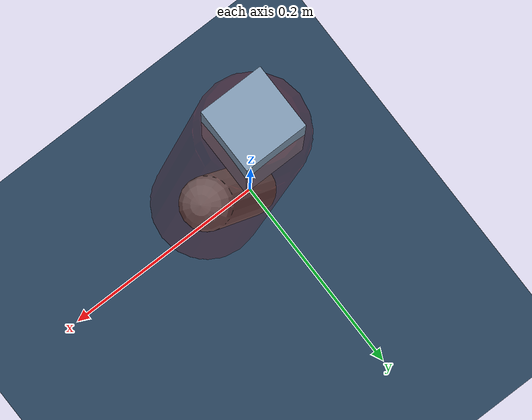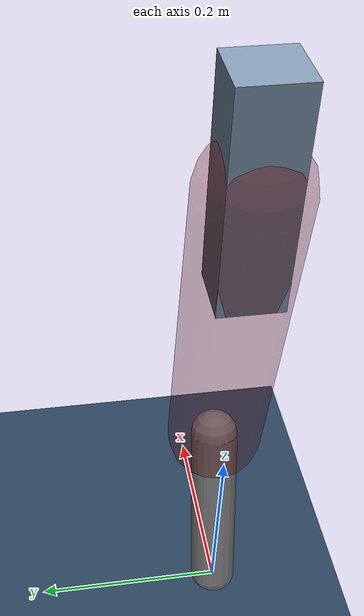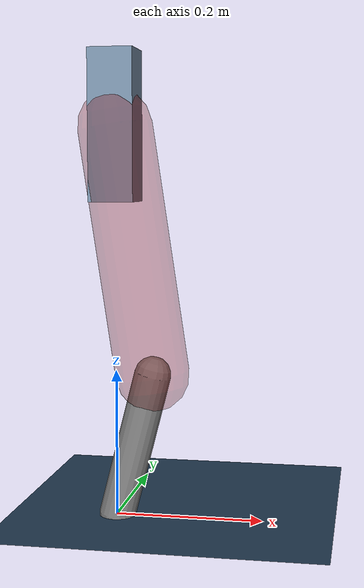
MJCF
<mujoco model="Hopper2D">
	<compiler inertiafromgeom="true" angle="radian" />
	<option timestep="0.001" integrator="implicit" cone="elliptic" solver="Newton" tolerance="1e-10" />

	<default>
		<geom contype="1" conaffinity="1" condim="3" friction="2 0.005 0.0001" solref="0.005 1" />
		<joint limited="true" damping="0.1" />
	</default>

	<asset>
		<texture name="skybox" type="skybox" builtin="gradient" rgb1=".4 .6 .8" rgb2="0 0 0" width="800" height="800" />
		<texture name="grid" type="2d" builtin="checker" rgb1=".1 .2 .3" rgb2=".2 .3 .4" width="300" height="300" mark="edge" markrgb=".2 .3 .4" />
		<material name="ground" texture="grid" texrepeat="1 1" texuniform="true" reflectance="0.1" />
		<material name="leg" rgba="0.5 0.6 0.7 1" />
	</asset>

	<worldbody>

		<geom name="floor" type="plane" size="5 5 0.25" material="ground" />

		<light directional="false" diffuse="0.8 0.8 0.8" specular="0.3 0.3 0.3" pos="0 0 2" dir="0 0 -1" />
		<light mode="targetbodycom" target="base" directional="false" diffuse="0.8 0.8 0.8" specular="0.3 0.3 0.3" pos="0 0 2" dir="0 0 -1" />

		<camera name="fixed" pos="0 -2 1" xyaxes="1 0 0 0 0 1" />
		<camera name="tracking" mode="trackcom" pos="0 -3 1" />

		<body name="root" pos="0 0 0.5282919021618461">
			<joint name="slide_x" type="slide" axis="1 0 0" range="-100 100" />
			<joint name="slide_z" type="slide" axis="0 0 1" range="0 10" />

			<body name="base" pos="0 0 0">
				<geom name="torso" type="box" size="0.03 0.03 0.1" mass="2.897" material="leg" />

				<body name="link1" pos="0 0 0" euler="0 1.4218130071371566 0">
					<joint type="hinge" axis="0 -1 0" pos="0 0 0" name="hinge1" limited="true" range="-3.14 3.14" stiffness="0" damping="0.1" />
					<geom name="thigh" type="capsule" fromto="0 0 0 0.3364160332080866 0 0" size="0.05" rgba="0.5 0 0 0.3" mass="1.0886648929826424" />

					<body name="link2" pos="0.3364160332080866 0 0" euler="0 0.398933634853488 0">
						<joint type="hinge" axis="0 -1 0" pos="0 0 0" name="hinge2" limited="true" range="-3.14 3.14" stiffness="0" damping="0.1" />
						<geom name="shank" type="capsule" fromto="0 0 0 0.20187586895375947 0 0" size="0.025" mass="0.40248828205838355" />

					</body>
				</body>
			</body>
		</body>
	</worldbody>

	<actuator>
		<motor name="torque1" joint="hinge1" ctrlrange="-144.384789318302 144.384789318302" ctrllimited="true" gear="1" />
		<motor name="torque2" joint="hinge2" ctrlrange="-80.71228125783477 80.71228125783477" ctrllimited="true" gear="1" />
	</actuator>
</mujoco>
